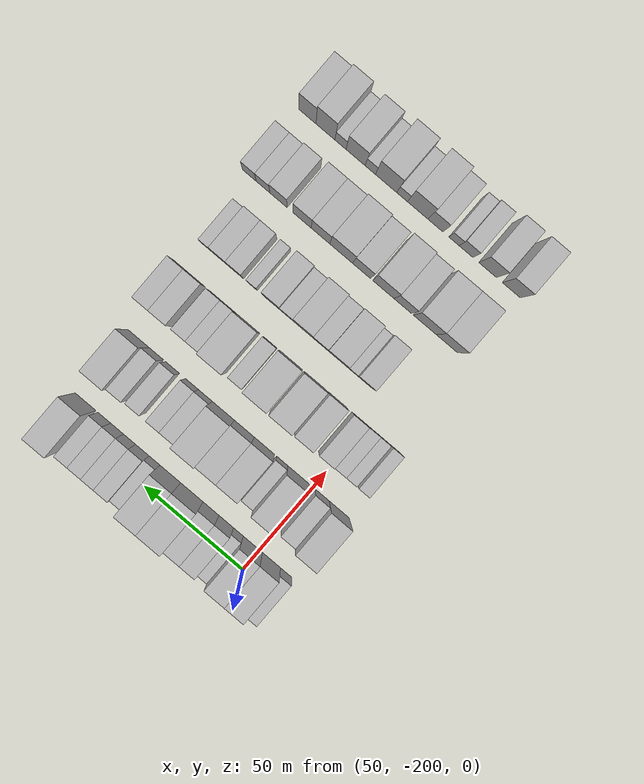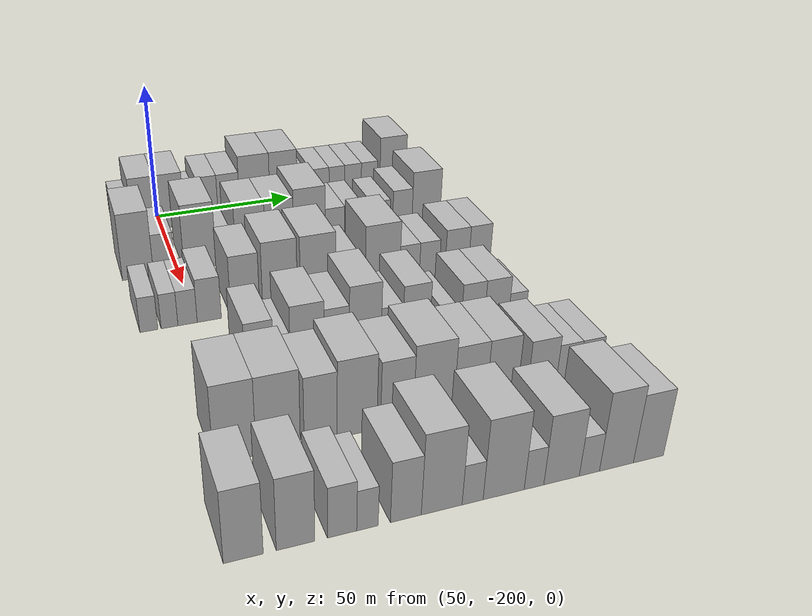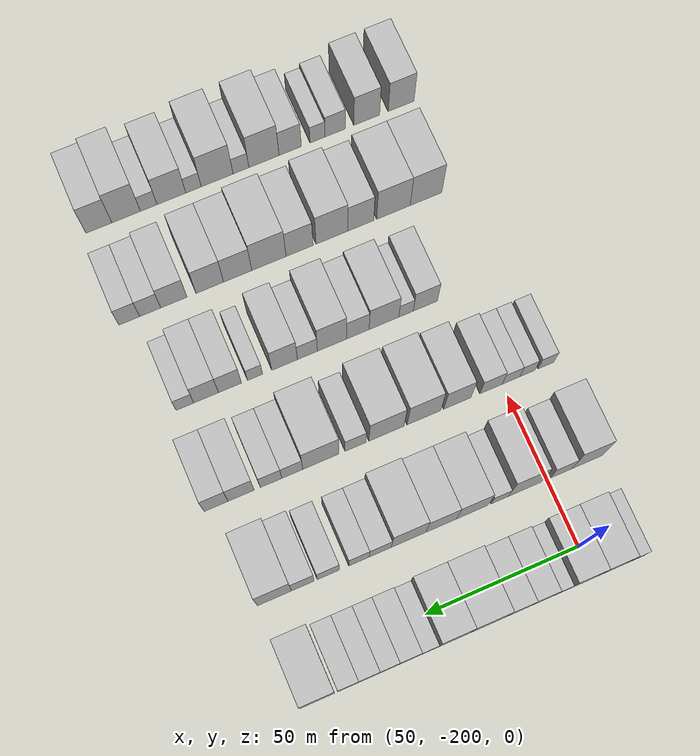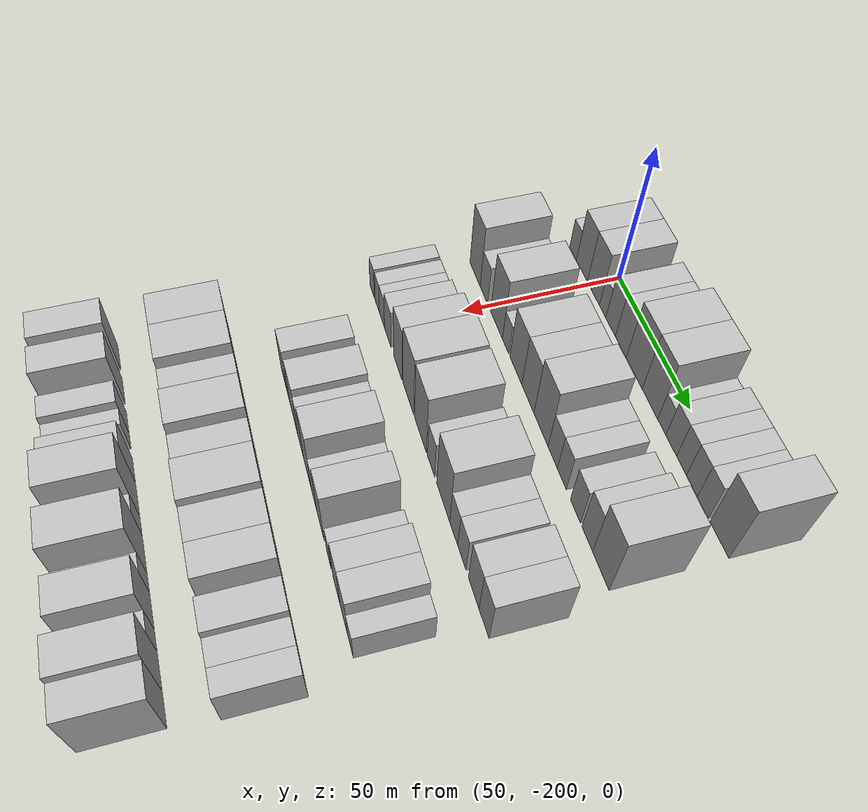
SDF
<sdf version="1.6">
 <world name="default">
  <model name="building_36">
   <static>1</static>
   <pose>50.0000 -213.4756 0 0.000000 0.000000 0.000000</pose>
   <link name="link">
    <pose>0 0 6.00 0 0 0</pose>
    <collision name="collision"><geometry><box><size>20.0000 5.7582 12.0000</size></box></geometry></collision>
    <visual name="visual">
     <cast_shadows>0</cast_shadows>
     <geometry><box><size>20.0000 5.7582 12.0000</size></box></geometry>
     <material>
      <script>
       <uri>model://HANNAS_wall/materials/scripts</uri>
       <uri>model://HANNAS_wall/materials/textures</uri>
       <name>vrc/HANNAS_wall</name>
      </script>
     </material>
    </visual>
   </link>
  </model>
  <model name="building_37">
   <static>1</static>
   <pose>50.0000 -206.0291 0 0.000000 0.000000 0.000000</pose>
   <link name="link">
    <pose>0 0 10.50 0 0 0</pose>
    <collision name="collision"><geometry><box><size>20.0000 9.1349 21.0000</size></box></geometry></collision>
    <visual name="visual">
     <cast_shadows>0</cast_shadows>
     <geometry><box><size>20.0000 9.1349 21.0000</size></box></geometry>
     <material>
      <script>
       <uri>model://HANNAS_wall/materials/scripts</uri>
       <uri>model://HANNAS_wall/materials/textures</uri>
       <name>vrc/HANNAS_wall</name>
      </script>
     </material>
    </visual>
   </link>
  </model>
  <model name="building_38">
   <static>1</static>
   <pose>50.0000 -196.5825 0 0.000000 0.000000 0.000000</pose>
   <link name="link">
    <pose>0 0 10.50 0 0 0</pose>
    <collision name="collision"><geometry><box><size>20.0000 9.7582 21.0000</size></box></geometry></collision>
    <visual name="visual">
     <cast_shadows>0</cast_shadows>
     <geometry><box><size>20.0000 9.7582 21.0000</size></box></geometry>
     <material>
      <script>
       <uri>model://HANNAS_wall/materials/scripts</uri>
       <uri>model://HANNAS_wall/materials/textures</uri>
       <name>vrc/HANNAS_wall</name>
      </script>
     </material>
    </visual>
   </link>
  </model>
  <model name="building_39">
   <static>1</static>
   <pose>50.0000 -189.2171 0 0.000000 0.000000 0.000000</pose>
   <link name="link">
    <pose>0 0 6.00 0 0 0</pose>
    <collision name="collision"><geometry><box><size>20.0000 4.9726 12.0000</size></box></geometry></collision>
    <visual name="visual">
     <cast_shadows>0</cast_shadows>
     <geometry><box><size>20.0000 4.9726 12.0000</size></box></geometry>
     <material>
      <script>
       <uri>model://HANNAS_wall/materials/scripts</uri>
       <uri>model://HANNAS_wall/materials/textures</uri>
       <name>vrc/HANNAS_wall</name>
      </script>
     </material>
    </visual>
   </link>
  </model>
  <model name="building_40">
   <static>1</static>
   <pose>50.0000 -183.0390 0 0.000000 0.000000 0.000000</pose>
   <link name="link">
    <pose>0 0 9.00 0 0 0</pose>
    <collision name="collision"><geometry><box><size>20.0000 7.3835 18.0000</size></box></geometry></collision>
    <visual name="visual">
     <cast_shadows>0</cast_shadows>
     <geometry><box><size>20.0000 7.3835 18.0000</size></box></geometry>
     <material>
      <script>
       <uri>model://HANNAS_wall/materials/scripts</uri>
       <uri>model://HANNAS_wall/materials/textures</uri>
       <name>vrc/HANNAS_wall</name>
      </script>
     </material>
    </visual>
   </link>
  </model>
  <model name="building_41">
   <static>1</static>
   <pose>50.0000 -175.3002 0 0.000000 0.000000 0.000000</pose>
   <link name="link">
    <pose>0 0 9.00 0 0 0</pose>
    <collision name="collision"><geometry><box><size>20.0000 8.0942 18.0000</size></box></geometry></collision>
    <visual name="visual">
     <cast_shadows>0</cast_shadows>
     <geometry><box><size>20.0000 8.0942 18.0000</size></box></geometry>
     <material>
      <script>
       <uri>model://HANNAS_wall/materials/scripts</uri>
       <uri>model://HANNAS_wall/materials/textures</uri>
       <name>vrc/HANNAS_wall</name>
      </script>
     </material>
    </visual>
   </link>
  </model>
  <model name="building_42">
   <static>1</static>
   <pose>50.0000 -165.5234 0 0.000000 0.000000 0.000000</pose>
   <link name="link">
    <pose>0 0 12.00 0 0 0</pose>
    <collision name="collision"><geometry><box><size>20.0000 11.4593 24.0000</size></box></geometry></collision>
    <visual name="visual">
     <cast_shadows>0</cast_shadows>
     <geometry><box><size>20.0000 11.4593 24.0000</size></box></geometry>
     <material>
      <script>
       <uri>model://HANNAS_wall/materials/scripts</uri>
       <uri>model://HANNAS_wall/materials/textures</uri>
       <name>vrc/HANNAS_wall</name>
      </script>
     </material>
    </visual>
   </link>
  </model>
  <model name="building_43">
   <static>1</static>
   <pose>50.0000 -154.5439 0 0.000000 0.000000 0.000000</pose>
   <link name="link">
    <pose>0 0 12.00 0 0 0</pose>
    <collision name="collision"><geometry><box><size>20.0000 10.4997 24.0000</size></box></geometry></collision>
    <visual name="visual">
     <cast_shadows>0</cast_shadows>
     <geometry><box><size>20.0000 10.4997 24.0000</size></box></geometry>
     <material>
      <script>
       <uri>model://HANNAS_wall/materials/scripts</uri>
       <uri>model://HANNAS_wall/materials/textures</uri>
       <name>vrc/HANNAS_wall</name>
      </script>
     </material>
    </visual>
   </link>
  </model>
  <model name="building_44">
   <static>1</static>
   <pose>50.0000 -146.5564 0 0.000000 0.000000 0.000000</pose>
   <link name="link">
    <pose>0 0 6.00 0 0 0</pose>
    <collision name="collision"><geometry><box><size>20.0000 5.4754 12.0000</size></box></geometry></collision>
    <visual name="visual">
     <cast_shadows>0</cast_shadows>
     <geometry><box><size>20.0000 5.4754 12.0000</size></box></geometry>
     <material>
      <script>
       <uri>model://HANNAS_wall/materials/scripts</uri>
       <uri>model://HANNAS_wall/materials/textures</uri>
       <name>vrc/HANNAS_wall</name>
      </script>
     </material>
    </visual>
   </link>
  </model>
  <model name="building_45">
   <static>1</static>
   <pose>50.0000 -140.3631 0 0.000000 0.000000 0.000000</pose>
   <link name="link">
    <pose>0 0 7.50 0 0 0</pose>
    <collision name="collision"><geometry><box><size>20.0000 6.9111 15.0000</size></box></geometry></collision>
    <visual name="visual">
     <cast_shadows>0</cast_shadows>
     <geometry><box><size>20.0000 6.9111 15.0000</size></box></geometry>
     <material>
      <script>
       <uri>model://HANNAS_wall/materials/scripts</uri>
       <uri>model://HANNAS_wall/materials/textures</uri>
       <name>vrc/HANNAS_wall</name>
      </script>
     </material>
    </visual>
   </link>
  </model>
  <model name="building_46">
   <static>1</static>
   <pose>50.0000 -133.8314 0 0.000000 0.000000 0.000000</pose>
   <link name="link">
    <pose>0 0 7.50 0 0 0</pose>
    <collision name="collision"><geometry><box><size>20.0000 6.1522 15.0000</size></box></geometry></collision>
    <visual name="visual">
     <cast_shadows>0</cast_shadows>
     <geometry><box><size>20.0000 6.1522 15.0000</size></box></geometry>
     <material>
      <script>
       <uri>model://HANNAS_wall/materials/scripts</uri>
       <uri>model://HANNAS_wall/materials/textures</uri>
       <name>vrc/HANNAS_wall</name>
      </script>
     </material>
    </visual>
   </link>
  </model>
  <model name="building_47">
   <static>1</static>
   <pose>50.0000 -127.4547 0 0.000000 0.000000 0.000000</pose>
   <link name="link">
    <pose>0 0 7.50 0 0 0</pose>
    <collision name="collision"><geometry><box><size>20.0000 6.6014 15.0000</size></box></geometry></collision>
    <visual name="visual">
     <cast_shadows>0</cast_shadows>
     <geometry><box><size>20.0000 6.6014 15.0000</size></box></geometry>
     <material>
      <script>
       <uri>model://HANNAS_wall/materials/scripts</uri>
       <uri>model://HANNAS_wall/materials/textures</uri>
       <name>vrc/HANNAS_wall</name>
      </script>
     </material>
    </visual>
   </link>
  </model>
  <model name="building_48">
   <static>1</static>
   <pose>50.0000 -120.9139 0 0.000000 0.000000 0.000000</pose>
   <link name="link">
    <pose>0 0 7.50 0 0 0</pose>
    <collision name="collision"><geometry><box><size>20.0000 6.4801 15.0000</size></box></geometry></collision>
    <visual name="visual">
     <cast_shadows>0</cast_shadows>
     <geometry><box><size>20.0000 6.4801 15.0000</size></box></geometry>
     <material>
      <script>
       <uri>model://HANNAS_wall/materials/scripts</uri>
       <uri>model://HANNAS_wall/materials/textures</uri>
       <name>vrc/HANNAS_wall</name>
      </script>
     </material>
    </visual>
   </link>
  </model>
  <model name="building_49">
   <static>1</static>
   <pose>50.0000 -111.3536 0 0.000000 0.000000 0.000000</pose>
   <link name="link">
    <pose>0 0 12.00 0 0 0</pose>
    <collision name="collision"><geometry><box><size>20.0000 10.6406 24.0000</size></box></geometry></collision>
    <visual name="visual">
     <cast_shadows>0</cast_shadows>
     <geometry><box><size>20.0000 10.6406 24.0000</size></box></geometry>
     <material>
      <script>
       <uri>model://HANNAS_wall/materials/scripts</uri>
       <uri>model://HANNAS_wall/materials/textures</uri>
       <name>vrc/HANNAS_wall</name>
      </script>
     </material>
    </visual>
   </link>
  </model>
  <model name="building_165">
   <static>1</static>
   <pose>82.0000 -213.2278 0 0.000000 0.000000 0.000000</pose>
   <link name="link">
    <pose>0 0 12.00 0 0 0</pose>
    <collision name="collision"><geometry><box><size>20.0000 10.1787 24.0000</size></box></geometry></collision>
    <visual name="visual">
     <cast_shadows>0</cast_shadows>
     <geometry><box><size>20.0000 10.1787 24.0000</size></box></geometry>
     <material>
      <script>
       <uri>model://HANNAS_wall/materials/scripts</uri>
       <uri>model://HANNAS_wall/materials/textures</uri>
       <name>vrc/HANNAS_wall</name>
      </script>
     </material>
    </visual>
   </link>
  </model>
  <model name="building_166">
   <static>1</static>
   <pose>82.0000 -204.5512 0 0.000000 0.000000 0.000000</pose>
   <link name="link">
    <pose>0 0 7.50 0 0 0</pose>
    <collision name="collision"><geometry><box><size>20.0000 7.1746 15.0000</size></box></geometry></collision>
    <visual name="visual">
     <cast_shadows>0</cast_shadows>
     <geometry><box><size>20.0000 7.1746 15.0000</size></box></geometry>
     <material>
      <script>
       <uri>model://HANNAS_wall/materials/scripts</uri>
       <uri>model://HANNAS_wall/materials/textures</uri>
       <name>vrc/HANNAS_wall</name>
      </script>
     </material>
    </visual>
   </link>
  </model>
  <model name="building_167">
   <static>1</static>
   <pose>82.0000 -192.5271 0 0.000000 0.000000 0.000000</pose>
   <link name="link">
    <pose>0 0 12.00 0 0 0</pose>
    <collision name="collision"><geometry><box><size>20.0000 10.8735 24.0000</size></box></geometry></collision>
    <visual name="visual">
     <cast_shadows>0</cast_shadows>
     <geometry><box><size>20.0000 10.8735 24.0000</size></box></geometry>
     <material>
      <script>
       <uri>model://HANNAS_wall/materials/scripts</uri>
       <uri>model://HANNAS_wall/materials/textures</uri>
       <name>vrc/HANNAS_wall</name>
      </script>
     </material>
    </visual>
   </link>
  </model>
  <model name="building_168">
   <static>1</static>
   <pose>82.0000 -184.2336 0 0.000000 0.000000 0.000000</pose>
   <link name="link">
    <pose>0 0 6.00 0 0 0</pose>
    <collision name="collision"><geometry><box><size>20.0000 5.7136 12.0000</size></box></geometry></collision>
    <visual name="visual">
     <cast_shadows>0</cast_shadows>
     <geometry><box><size>20.0000 5.7136 12.0000</size></box></geometry>
     <material>
      <script>
       <uri>model://HANNAS_wall/materials/scripts</uri>
       <uri>model://HANNAS_wall/materials/textures</uri>
       <name>vrc/HANNAS_wall</name>
      </script>
     </material>
    </visual>
   </link>
  </model>
  <model name="building_169">
   <static>1</static>
   <pose>82.0000 -175.2098 0 0.000000 0.000000 0.000000</pose>
   <link name="link">
    <pose>0 0 10.50 0 0 0</pose>
    <collision name="collision"><geometry><box><size>20.0000 10.3340 21.0000</size></box></geometry></collision>
    <visual name="visual">
     <cast_shadows>0</cast_shadows>
     <geometry><box><size>20.0000 10.3340 21.0000</size></box></geometry>
     <material>
      <script>
       <uri>model://HANNAS_wall/materials/scripts</uri>
       <uri>model://HANNAS_wall/materials/textures</uri>
       <name>vrc/HANNAS_wall</name>
      </script>
     </material>
    </visual>
   </link>
  </model>
  <model name="building_170">
   <static>1</static>
   <pose>82.0000 -165.0178 0 0.000000 0.000000 0.000000</pose>
   <link name="link">
    <pose>0 0 10.50 0 0 0</pose>
    <collision name="collision"><geometry><box><size>20.0000 10.0502 21.0000</size></box></geometry></collision>
    <visual name="visual">
     <cast_shadows>0</cast_shadows>
     <geometry><box><size>20.0000 10.0502 21.0000</size></box></geometry>
     <material>
      <script>
       <uri>model://HANNAS_wall/materials/scripts</uri>
       <uri>model://HANNAS_wall/materials/textures</uri>
       <name>vrc/HANNAS_wall</name>
      </script>
     </material>
    </visual>
   </link>
  </model>
  <model name="building_171">
   <static>1</static>
   <pose>82.0000 -154.3665 0 0.000000 0.000000 0.000000</pose>
   <link name="link">
    <pose>0 0 12.00 0 0 0</pose>
    <collision name="collision"><geometry><box><size>20.0000 11.2523 24.0000</size></box></geometry></collision>
    <visual name="visual">
     <cast_shadows>0</cast_shadows>
     <geometry><box><size>20.0000 11.2523 24.0000</size></box></geometry>
     <material>
      <script>
       <uri>model://HANNAS_wall/materials/scripts</uri>
       <uri>model://HANNAS_wall/materials/textures</uri>
       <name>vrc/HANNAS_wall</name>
      </script>
     </material>
    </visual>
   </link>
  </model>
  <model name="building_172">
   <static>1</static>
   <pose>82.0000 -145.1829 0 0.000000 0.000000 0.000000</pose>
   <link name="link">
    <pose>0 0 7.50 0 0 0</pose>
    <collision name="collision"><geometry><box><size>20.0000 7.1149 15.0000</size></box></geometry></collision>
    <visual name="visual">
     <cast_shadows>0</cast_shadows>
     <geometry><box><size>20.0000 7.1149 15.0000</size></box></geometry>
     <material>
      <script>
       <uri>model://HANNAS_wall/materials/scripts</uri>
       <uri>model://HANNAS_wall/materials/textures</uri>
       <name>vrc/HANNAS_wall</name>
      </script>
     </material>
    </visual>
   </link>
  </model>
  <model name="building_173">
   <static>1</static>
   <pose>82.0000 -138.3194 0 0.000000 0.000000 0.000000</pose>
   <link name="link">
    <pose>0 0 7.50 0 0 0</pose>
    <collision name="collision"><geometry><box><size>20.0000 6.6121 15.0000</size></box></geometry></collision>
    <visual name="visual">
     <cast_shadows>0</cast_shadows>
     <geometry><box><size>20.0000 6.6121 15.0000</size></box></geometry>
     <material>
      <script>
       <uri>model://HANNAS_wall/materials/scripts</uri>
       <uri>model://HANNAS_wall/materials/textures</uri>
       <name>vrc/HANNAS_wall</name>
      </script>
     </material>
    </visual>
   </link>
  </model>
  <model name="building_174">
   <static>1</static>
   <pose>82.0000 -128.4636 0 0.000000 0.000000 0.000000</pose>
   <link name="link">
    <pose>0 0 7.50 0 0 0</pose>
    <collision name="collision"><geometry><box><size>20.0000 7.0996 15.0000</size></box></geometry></collision>
    <visual name="visual">
     <cast_shadows>0</cast_shadows>
     <geometry><box><size>20.0000 7.0996 15.0000</size></box></geometry>
     <material>
      <script>
       <uri>model://HANNAS_wall/materials/scripts</uri>
       <uri>model://HANNAS_wall/materials/textures</uri>
       <name>vrc/HANNAS_wall</name>
      </script>
     </material>
    </visual>
   </link>
  </model>
  <model name="building_175">
   <static>1</static>
   <pose>82.0000 -120.2692 0 0.000000 0.000000 0.000000</pose>
   <link name="link">
    <pose>0 0 9.00 0 0 0</pose>
    <collision name="collision"><geometry><box><size>20.0000 7.2894 18.0000</size></box></geometry></collision>
    <visual name="visual">
     <cast_shadows>0</cast_shadows>
     <geometry><box><size>20.0000 7.2894 18.0000</size></box></geometry>
     <material>
      <script>
       <uri>model://HANNAS_wall/materials/scripts</uri>
       <uri>model://HANNAS_wall/materials/textures</uri>
       <name>vrc/HANNAS_wall</name>
      </script>
     </material>
    </visual>
   </link>
  </model>
  <model name="building_176">
   <static>1</static>
   <pose>82.0000 -111.2382 0 0.000000 0.000000 0.000000</pose>
   <link name="link">
    <pose>0 0 12.00 0 0 0</pose>
    <collision name="collision"><geometry><box><size>20.0000 10.7725 24.0000</size></box></geometry></collision>
    <visual name="visual">
     <cast_shadows>0</cast_shadows>
     <geometry><box><size>20.0000 10.7725 24.0000</size></box></geometry>
     <material>
      <script>
       <uri>model://HANNAS_wall/materials/scripts</uri>
       <uri>model://HANNAS_wall/materials/textures</uri>
       <name>vrc/HANNAS_wall</name>
      </script>
     </material>
    </visual>
   </link>
  </model>
  <model name="building_289">
   <static>1</static>
   <pose>114.0000 -214.7127 0 0.000000 0.000000 0.000000</pose>
   <link name="link">
    <pose>0 0 6.00 0 0 0</pose>
    <collision name="collision"><geometry><box><size>20.0000 5.3920 12.0000</size></box></geometry></collision>
    <visual name="visual">
     <cast_shadows>0</cast_shadows>
     <geometry><box><size>20.0000 5.3920 12.0000</size></box></geometry>
     <material>
      <script>
       <uri>model://HANNAS_wall/materials/scripts</uri>
       <uri>model://HANNAS_wall/materials/textures</uri>
       <name>vrc/HANNAS_wall</name>
      </script>
     </material>
    </visual>
   </link>
  </model>
  <model name="building_290">
   <static>1</static>
   <pose>114.0000 -208.4666 0 0.000000 0.000000 0.000000</pose>
   <link name="link">
    <pose>0 0 6.00 0 0 0</pose>
    <collision name="collision"><geometry><box><size>20.0000 5.1001 12.0000</size></box></geometry></collision>
    <visual name="visual">
     <cast_shadows>0</cast_shadows>
     <geometry><box><size>20.0000 5.1001 12.0000</size></box></geometry>
     <material>
      <script>
       <uri>model://HANNAS_wall/materials/scripts</uri>
       <uri>model://HANNAS_wall/materials/textures</uri>
       <name>vrc/HANNAS_wall</name>
      </script>
     </material>
    </visual>
   </link>
  </model>
  <model name="building_291">
   <static>1</static>
   <pose>114.0000 -202.9513 0 0.000000 0.000000 0.000000</pose>
   <link name="link">
    <pose>0 0 6.00 0 0 0</pose>
    <collision name="collision"><geometry><box><size>20.0000 5.9306 12.0000</size></box></geometry></collision>
    <visual name="visual">
     <cast_shadows>0</cast_shadows>
     <geometry><box><size>20.0000 5.9306 12.0000</size></box></geometry>
     <material>
      <script>
       <uri>model://HANNAS_wall/materials/scripts</uri>
       <uri>model://HANNAS_wall/materials/textures</uri>
       <name>vrc/HANNAS_wall</name>
      </script>
     </material>
    </visual>
   </link>
  </model>
  <model name="building_292">
   <static>1</static>
   <pose>114.0000 -196.2373 0 0.000000 0.000000 0.000000</pose>
   <link name="link">
    <pose>0 0 7.50 0 0 0</pose>
    <collision name="collision"><geometry><box><size>20.0000 7.4974 15.0000</size></box></geometry></collision>
    <visual name="visual">
     <cast_shadows>0</cast_shadows>
     <geometry><box><size>20.0000 7.4974 15.0000</size></box></geometry>
     <material>
      <script>
       <uri>model://HANNAS_wall/materials/scripts</uri>
       <uri>model://HANNAS_wall/materials/textures</uri>
       <name>vrc/HANNAS_wall</name>
      </script>
     </material>
    </visual>
   </link>
  </model>
  <model name="building_293">
   <static>1</static>
   <pose>114.0000 -184.9169 0 0.000000 0.000000 0.000000</pose>
   <link name="link">
    <pose>0 0 10.50 0 0 0</pose>
    <collision name="collision"><geometry><box><size>20.0000 9.1435 21.0000</size></box></geometry></collision>
    <visual name="visual">
     <cast_shadows>0</cast_shadows>
     <geometry><box><size>20.0000 9.1435 21.0000</size></box></geometry>
     <material>
      <script>
       <uri>model://HANNAS_wall/materials/scripts</uri>
       <uri>model://HANNAS_wall/materials/textures</uri>
       <name>vrc/HANNAS_wall</name>
      </script>
     </material>
    </visual>
   </link>
  </model>
  <model name="building_294">
   <static>1</static>
   <pose>114.0000 -173.7468 0 0.000000 0.000000 0.000000</pose>
   <link name="link">
    <pose>0 0 12.00 0 0 0</pose>
    <collision name="collision"><geometry><box><size>20.0000 11.1966 24.0000</size></box></geometry></collision>
    <visual name="visual">
     <cast_shadows>0</cast_shadows>
     <geometry><box><size>20.0000 11.1966 24.0000</size></box></geometry>
     <material>
      <script>
       <uri>model://HANNAS_wall/materials/scripts</uri>
       <uri>model://HANNAS_wall/materials/textures</uri>
       <name>vrc/HANNAS_wall</name>
      </script>
     </material>
    </visual>
   </link>
  </model>
  <model name="building_295">
   <static>1</static>
   <pose>114.0000 -161.3422 0 0.000000 0.000000 0.000000</pose>
   <link name="link">
    <pose>0 0 12.00 0 0 0</pose>
    <collision name="collision"><geometry><box><size>20.0000 11.6127 24.0000</size></box></geometry></collision>
    <visual name="visual">
     <cast_shadows>0</cast_shadows>
     <geometry><box><size>20.0000 11.6127 24.0000</size></box></geometry>
     <material>
      <script>
       <uri>model://HANNAS_wall/materials/scripts</uri>
       <uri>model://HANNAS_wall/materials/textures</uri>
       <name>vrc/HANNAS_wall</name>
      </script>
     </material>
    </visual>
   </link>
  </model>
  <model name="building_296">
   <static>1</static>
   <pose>114.0000 -151.1063 0 0.000000 0.000000 0.000000</pose>
   <link name="link">
    <pose>0 0 7.50 0 0 0</pose>
    <collision name="collision"><geometry><box><size>20.0000 6.8592 15.0000</size></box></geometry></collision>
    <visual name="visual">
     <cast_shadows>0</cast_shadows>
     <geometry><box><size>20.0000 6.8592 15.0000</size></box></geometry>
     <material>
      <script>
       <uri>model://HANNAS_wall/materials/scripts</uri>
       <uri>model://HANNAS_wall/materials/textures</uri>
       <name>vrc/HANNAS_wall</name>
      </script>
     </material>
    </visual>
   </link>
  </model>
  <model name="building_297">
   <static>1</static>
   <pose>114.0000 -139.7687 0 0.000000 0.000000 0.000000</pose>
   <link name="link">
    <pose>0 0 12.00 0 0 0</pose>
    <collision name="collision"><geometry><box><size>20.0000 11.8159 24.0000</size></box></geometry></collision>
    <visual name="visual">
     <cast_shadows>0</cast_shadows>
     <geometry><box><size>20.0000 11.8159 24.0000</size></box></geometry>
     <material>
      <script>
       <uri>model://HANNAS_wall/materials/scripts</uri>
       <uri>model://HANNAS_wall/materials/textures</uri>
       <name>vrc/HANNAS_wall</name>
      </script>
     </material>
    </visual>
   </link>
  </model>
  <model name="building_298">
   <static>1</static>
   <pose>114.0000 -130.4417 0 0.000000 0.000000 0.000000</pose>
   <link name="link">
    <pose>0 0 7.50 0 0 0</pose>
    <collision name="collision"><geometry><box><size>20.0000 6.8381 15.0000</size></box></geometry></collision>
    <visual name="visual">
     <cast_shadows>0</cast_shadows>
     <geometry><box><size>20.0000 6.8381 15.0000</size></box></geometry>
     <material>
      <script>
       <uri>model://HANNAS_wall/materials/scripts</uri>
       <uri>model://HANNAS_wall/materials/textures</uri>
       <name>vrc/HANNAS_wall</name>
      </script>
     </material>
    </visual>
   </link>
  </model>
  <model name="building_299">
   <static>1</static>
   <pose>114.0000 -123.5285 0 0.000000 0.000000 0.000000</pose>
   <link name="link">
    <pose>0 0 7.50 0 0 0</pose>
    <collision name="collision"><geometry><box><size>20.0000 6.9883 15.0000</size></box></geometry></collision>
    <visual name="visual">
     <cast_shadows>0</cast_shadows>
     <geometry><box><size>20.0000 6.9883 15.0000</size></box></geometry>
     <material>
      <script>
       <uri>model://HANNAS_wall/materials/scripts</uri>
       <uri>model://HANNAS_wall/materials/textures</uri>
       <name>vrc/HANNAS_wall</name>
      </script>
     </material>
    </visual>
   </link>
  </model>
  <model name="building_300">
   <static>1</static>
   <pose>114.0000 -113.8081 0 0.000000 0.000000 0.000000</pose>
   <link name="link">
    <pose>0 0 9.00 0 0 0</pose>
    <collision name="collision"><geometry><box><size>20.0000 8.4526 18.0000</size></box></geometry></collision>
    <visual name="visual">
     <cast_shadows>0</cast_shadows>
     <geometry><box><size>20.0000 8.4526 18.0000</size></box></geometry>
     <material>
      <script>
       <uri>model://HANNAS_wall/materials/scripts</uri>
       <uri>model://HANNAS_wall/materials/textures</uri>
       <name>vrc/HANNAS_wall</name>
      </script>
     </material>
    </visual>
   </link>
  </model>
  <model name="building_301">
   <static>1</static>
   <pose>114.0000 -105.7337 0 0.000000 0.000000 0.000000</pose>
   <link name="link">
    <pose>0 0 9.00 0 0 0</pose>
    <collision name="collision"><geometry><box><size>20.0000 7.6961 18.0000</size></box></geometry></collision>
    <visual name="visual">
     <cast_shadows>0</cast_shadows>
     <geometry><box><size>20.0000 7.6961 18.0000</size></box></geometry>
     <material>
      <script>
       <uri>model://HANNAS_wall/materials/scripts</uri>
       <uri>model://HANNAS_wall/materials/textures</uri>
       <name>vrc/HANNAS_wall</name>
      </script>
     </material>
    </visual>
   </link>
  </model>
  <model name="building_404">
   <static>1</static>
   <pose>146.0000 -188.6310 0 0.000000 0.000000 0.000000</pose>
   <link name="link">
    <pose>0 0 9.00 0 0 0</pose>
    <collision name="collision"><geometry><box><size>20.0000 8.1822 18.0000</size></box></geometry></collision>
    <visual name="visual">
     <cast_shadows>0</cast_shadows>
     <geometry><box><size>20.0000 8.1822 18.0000</size></box></geometry>
     <material>
      <script>
       <uri>model://HANNAS_wall/materials/scripts</uri>
       <uri>model://HANNAS_wall/materials/textures</uri>
       <name>vrc/HANNAS_wall</name>
      </script>
     </material>
    </visual>
   </link>
  </model>
  <model name="building_405">
   <static>1</static>
   <pose>146.0000 -182.0834 0 0.000000 0.000000 0.000000</pose>
   <link name="link">
    <pose>0 0 6.00 0 0 0</pose>
    <collision name="collision"><geometry><box><size>20.0000 4.9129 12.0000</size></box></geometry></collision>
    <visual name="visual">
     <cast_shadows>0</cast_shadows>
     <geometry><box><size>20.0000 4.9129 12.0000</size></box></geometry>
     <material>
      <script>
       <uri>model://HANNAS_wall/materials/scripts</uri>
       <uri>model://HANNAS_wall/materials/textures</uri>
       <name>vrc/HANNAS_wall</name>
      </script>
     </material>
    </visual>
   </link>
  </model>
  <model name="building_406">
   <static>1</static>
   <pose>146.0000 -174.6200 0 0.000000 0.000000 0.000000</pose>
   <link name="link">
    <pose>0 0 10.50 0 0 0</pose>
    <collision name="collision"><geometry><box><size>20.0000 10.0140 21.0000</size></box></geometry></collision>
    <visual name="visual">
     <cast_shadows>0</cast_shadows>
     <geometry><box><size>20.0000 10.0140 21.0000</size></box></geometry>
     <material>
      <script>
       <uri>model://HANNAS_wall/materials/scripts</uri>
       <uri>model://HANNAS_wall/materials/textures</uri>
       <name>vrc/HANNAS_wall</name>
      </script>
     </material>
    </visual>
   </link>
  </model>
  <model name="building_407">
   <static>1</static>
   <pose>146.0000 -165.8591 0 0.000000 0.000000 0.000000</pose>
   <link name="link">
    <pose>0 0 9.00 0 0 0</pose>
    <collision name="collision"><geometry><box><size>20.0000 7.5078 18.0000</size></box></geometry></collision>
    <visual name="visual">
     <cast_shadows>0</cast_shadows>
     <geometry><box><size>20.0000 7.5078 18.0000</size></box></geometry>
     <material>
      <script>
       <uri>model://HANNAS_wall/materials/scripts</uri>
       <uri>model://HANNAS_wall/materials/textures</uri>
       <name>vrc/HANNAS_wall</name>
      </script>
     </material>
    </visual>
   </link>
  </model>
  <model name="building_408">
   <static>1</static>
   <pose>146.0000 -157.2145 0 0.000000 0.000000 0.000000</pose>
   <link name="link">
    <pose>0 0 12.00 0 0 0</pose>
    <collision name="collision"><geometry><box><size>20.0000 9.7814 24.0000</size></box></geometry></collision>
    <visual name="visual">
     <cast_shadows>0</cast_shadows>
     <geometry><box><size>20.0000 9.7814 24.0000</size></box></geometry>
     <material>
      <script>
       <uri>model://HANNAS_wall/materials/scripts</uri>
       <uri>model://HANNAS_wall/materials/textures</uri>
       <name>vrc/HANNAS_wall</name>
      </script>
     </material>
    </visual>
   </link>
  </model>
  <model name="building_409">
   <static>1</static>
   <pose>146.0000 -148.9905 0 0.000000 0.000000 0.000000</pose>
   <link name="link">
    <pose>0 0 7.50 0 0 0</pose>
    <collision name="collision"><geometry><box><size>20.0000 6.6666 15.0000</size></box></geometry></collision>
    <visual name="visual">
     <cast_shadows>0</cast_shadows>
     <geometry><box><size>20.0000 6.6666 15.0000</size></box></geometry>
     <material>
      <script>
       <uri>model://HANNAS_wall/materials/scripts</uri>
       <uri>model://HANNAS_wall/materials/textures</uri>
       <name>vrc/HANNAS_wall</name>
      </script>
     </material>
    </visual>
   </link>
  </model>
  <model name="building_410">
   <static>1</static>
   <pose>146.0000 -141.3815 0 0.000000 0.000000 0.000000</pose>
   <link name="link">
    <pose>0 0 10.50 0 0 0</pose>
    <collision name="collision"><geometry><box><size>20.0000 8.5515 21.0000</size></box></geometry></collision>
    <visual name="visual">
     <cast_shadows>0</cast_shadows>
     <geometry><box><size>20.0000 8.5515 21.0000</size></box></geometry>
     <material>
      <script>
       <uri>model://HANNAS_wall/materials/scripts</uri>
       <uri>model://HANNAS_wall/materials/textures</uri>
       <name>vrc/HANNAS_wall</name>
      </script>
     </material>
    </visual>
   </link>
  </model>
  <model name="building_411">
   <static>1</static>
   <pose>146.0000 -131.5933 0 0.000000 0.000000 0.000000</pose>
   <link name="link">
    <pose>0 0 6.00 0 0 0</pose>
    <collision name="collision"><geometry><box><size>20.0000 5.0251 12.0000</size></box></geometry></collision>
    <visual name="visual">
     <cast_shadows>0</cast_shadows>
     <geometry><box><size>20.0000 5.0251 12.0000</size></box></geometry>
     <material>
      <script>
       <uri>model://HANNAS_wall/materials/scripts</uri>
       <uri>model://HANNAS_wall/materials/textures</uri>
       <name>vrc/HANNAS_wall</name>
      </script>
     </material>
    </visual>
   </link>
  </model>
  <model name="building_412">
   <static>1</static>
   <pose>146.0000 -123.2937 0 0.000000 0.000000 0.000000</pose>
   <link name="link">
    <pose>0 0 9.00 0 0 0</pose>
    <collision name="collision"><geometry><box><size>20.0000 7.5740 18.0000</size></box></geometry></collision>
    <visual name="visual">
     <cast_shadows>0</cast_shadows>
     <geometry><box><size>20.0000 7.5740 18.0000</size></box></geometry>
     <material>
      <script>
       <uri>model://HANNAS_wall/materials/scripts</uri>
       <uri>model://HANNAS_wall/materials/textures</uri>
       <name>vrc/HANNAS_wall</name>
      </script>
     </material>
    </visual>
   </link>
  </model>
  <model name="building_413">
   <static>1</static>
   <pose>146.0000 -115.4598 0 0.000000 0.000000 0.000000</pose>
   <link name="link">
    <pose>0 0 9.00 0 0 0</pose>
    <collision name="collision"><geometry><box><size>20.0000 8.0939 18.0000</size></box></geometry></collision>
    <visual name="visual">
     <cast_shadows>0</cast_shadows>
     <geometry><box><size>20.0000 8.0939 18.0000</size></box></geometry>
     <material>
      <script>
       <uri>model://HANNAS_wall/materials/scripts</uri>
       <uri>model://HANNAS_wall/materials/textures</uri>
       <name>vrc/HANNAS_wall</name>
      </script>
     </material>
    </visual>
   </link>
  </model>
  <model name="building_414">
   <static>1</static>
   <pose>146.0000 -108.5123 0 0.000000 0.000000 0.000000</pose>
   <link name="link">
    <pose>0 0 6.00 0 0 0</pose>
    <collision name="collision"><geometry><box><size>20.0000 5.8012 12.0000</size></box></geometry></collision>
    <visual name="visual">
     <cast_shadows>0</cast_shadows>
     <geometry><box><size>20.0000 5.8012 12.0000</size></box></geometry>
     <material>
      <script>
       <uri>model://HANNAS_wall/materials/scripts</uri>
       <uri>model://HANNAS_wall/materials/textures</uri>
       <name>vrc/HANNAS_wall</name>
      </script>
     </material>
    </visual>
   </link>
  </model>
  <model name="building_530">
   <static>1</static>
   <pose>178.0000 -203.2652 0 0.000000 0.000000 0.000000</pose>
   <link name="link">
    <pose>0 0 12.00 0 0 0</pose>
    <collision name="collision"><geometry><box><size>20.0000 10.8945 24.0000</size></box></geometry></collision>
    <visual name="visual">
     <cast_shadows>0</cast_shadows>
     <geometry><box><size>20.0000 10.8945 24.0000</size></box></geometry>
     <material>
      <script>
       <uri>model://HANNAS_wall/materials/scripts</uri>
       <uri>model://HANNAS_wall/materials/textures</uri>
       <name>vrc/HANNAS_wall</name>
      </script>
     </material>
    </visual>
   </link>
  </model>
  <model name="building_531">
   <static>1</static>
   <pose>178.0000 -192.0294 0 0.000000 0.000000 0.000000</pose>
   <link name="link">
    <pose>0 0 12.00 0 0 0</pose>
    <collision name="collision"><geometry><box><size>20.0000 11.5771 24.0000</size></box></geometry></collision>
    <visual name="visual">
     <cast_shadows>0</cast_shadows>
     <geometry><box><size>20.0000 11.5771 24.0000</size></box></geometry>
     <material>
      <script>
       <uri>model://HANNAS_wall/materials/scripts</uri>
       <uri>model://HANNAS_wall/materials/textures</uri>
       <name>vrc/HANNAS_wall</name>
      </script>
     </material>
    </visual>
   </link>
  </model>
  <model name="building_532">
   <static>1</static>
   <pose>178.0000 -180.8157 0 0.000000 0.000000 0.000000</pose>
   <link name="link">
    <pose>0 0 10.50 0 0 0</pose>
    <collision name="collision"><geometry><box><size>20.0000 8.8502 21.0000</size></box></geometry></collision>
    <visual name="visual">
     <cast_shadows>0</cast_shadows>
     <geometry><box><size>20.0000 8.8502 21.0000</size></box></geometry>
     <material>
      <script>
       <uri>model://HANNAS_wall/materials/scripts</uri>
       <uri>model://HANNAS_wall/materials/textures</uri>
       <name>vrc/HANNAS_wall</name>
      </script>
     </material>
    </visual>
   </link>
  </model>
  <model name="building_533">
   <static>1</static>
   <pose>178.0000 -170.9533 0 0.000000 0.000000 0.000000</pose>
   <link name="link">
    <pose>0 0 12.00 0 0 0</pose>
    <collision name="collision"><geometry><box><size>20.0000 10.8746 24.0000</size></box></geometry></collision>
    <visual name="visual">
     <cast_shadows>0</cast_shadows>
     <geometry><box><size>20.0000 10.8746 24.0000</size></box></geometry>
     <material>
      <script>
       <uri>model://HANNAS_wall/materials/scripts</uri>
       <uri>model://HANNAS_wall/materials/textures</uri>
       <name>vrc/HANNAS_wall</name>
      </script>
     </material>
    </visual>
   </link>
  </model>
  <model name="building_534">
   <static>1</static>
   <pose>178.0000 -159.9305 0 0.000000 0.000000 0.000000</pose>
   <link name="link">
    <pose>0 0 10.50 0 0 0</pose>
    <collision name="collision"><geometry><box><size>20.0000 9.1710 21.0000</size></box></geometry></collision>
    <visual name="visual">
     <cast_shadows>0</cast_shadows>
     <geometry><box><size>20.0000 9.1710 21.0000</size></box></geometry>
     <material>
      <script>
       <uri>model://HANNAS_wall/materials/scripts</uri>
       <uri>model://HANNAS_wall/materials/textures</uri>
       <name>vrc/HANNAS_wall</name>
      </script>
     </material>
    </visual>
   </link>
  </model>
  <model name="building_535">
   <static>1</static>
   <pose>178.0000 -149.5548 0 0.000000 0.000000 0.000000</pose>
   <link name="link">
    <pose>0 0 12.00 0 0 0</pose>
    <collision name="collision"><geometry><box><size>20.0000 11.5803 24.0000</size></box></geometry></collision>
    <visual name="visual">
     <cast_shadows>0</cast_shadows>
     <geometry><box><size>20.0000 11.5803 24.0000</size></box></geometry>
     <material>
      <script>
       <uri>model://HANNAS_wall/materials/scripts</uri>
       <uri>model://HANNAS_wall/materials/textures</uri>
       <name>vrc/HANNAS_wall</name>
      </script>
     </material>
    </visual>
   </link>
  </model>
  <model name="building_536">
   <static>1</static>
   <pose>178.0000 -139.0155 0 0.000000 0.000000 0.000000</pose>
   <link name="link">
    <pose>0 0 10.50 0 0 0</pose>
    <collision name="collision"><geometry><box><size>20.0000 9.4981 21.0000</size></box></geometry></collision>
    <visual name="visual">
     <cast_shadows>0</cast_shadows>
     <geometry><box><size>20.0000 9.4981 21.0000</size></box></geometry>
     <material>
      <script>
       <uri>model://HANNAS_wall/materials/scripts</uri>
       <uri>model://HANNAS_wall/materials/textures</uri>
       <name>vrc/HANNAS_wall</name>
      </script>
     </material>
    </visual>
   </link>
  </model>
  <model name="building_537">
   <static>1</static>
   <pose>178.0000 -129.6422 0 0.000000 0.000000 0.000000</pose>
   <link name="link">
    <pose>0 0 10.50 0 0 0</pose>
    <collision name="collision"><geometry><box><size>20.0000 9.2486 21.0000</size></box></geometry></collision>
    <visual name="visual">
     <cast_shadows>0</cast_shadows>
     <geometry><box><size>20.0000 9.2486 21.0000</size></box></geometry>
     <material>
      <script>
       <uri>model://HANNAS_wall/materials/scripts</uri>
       <uri>model://HANNAS_wall/materials/textures</uri>
       <name>vrc/HANNAS_wall</name>
      </script>
     </material>
    </visual>
   </link>
  </model>
  <model name="building_538">
   <static>1</static>
   <pose>178.0000 -117.6517 0 0.000000 0.000000 0.000000</pose>
   <link name="link">
    <pose>0 0 9.00 0 0 0</pose>
    <collision name="collision"><geometry><box><size>20.0000 8.7324 18.0000</size></box></geometry></collision>
    <visual name="visual">
     <cast_shadows>0</cast_shadows>
     <geometry><box><size>20.0000 8.7324 18.0000</size></box></geometry>
     <material>
      <script>
       <uri>model://HANNAS_wall/materials/scripts</uri>
       <uri>model://HANNAS_wall/materials/textures</uri>
       <name>vrc/HANNAS_wall</name>
      </script>
     </material>
    </visual>
   </link>
  </model>
  <model name="building_539">
   <static>1</static>
   <pose>178.0000 -109.7889 0 0.000000 0.000000 0.000000</pose>
   <link name="link">
    <pose>0 0 7.50 0 0 0</pose>
    <collision name="collision"><geometry><box><size>20.0000 6.9932 15.0000</size></box></geometry></collision>
    <visual name="visual">
     <cast_shadows>0</cast_shadows>
     <geometry><box><size>20.0000 6.9932 15.0000</size></box></geometry>
     <material>
      <script>
       <uri>model://HANNAS_wall/materials/scripts</uri>
       <uri>model://HANNAS_wall/materials/textures</uri>
       <name>vrc/HANNAS_wall</name>
      </script>
     </material>
    </visual>
   </link>
  </model>
  <model name="building_540">
   <static>1</static>
   <pose>178.0000 -102.8449 0 0.000000 0.000000 0.000000</pose>
   <link name="link">
    <pose>0 0 7.50 0 0 0</pose>
    <collision name="collision"><geometry><box><size>20.0000 6.8946 15.0000</size></box></geometry></collision>
    <visual name="visual">
     <cast_shadows>0</cast_shadows>
     <geometry><box><size>20.0000 6.8946 15.0000</size></box></geometry>
     <material>
      <script>
       <uri>model://HANNAS_wall/materials/scripts</uri>
       <uri>model://HANNAS_wall/materials/textures</uri>
       <name>vrc/HANNAS_wall</name>
      </script>
     </material>
    </visual>
   </link>
  </model>
  <model name="building_650">
   <static>1</static>
   <pose>210.0000 -208.8849 0 0.000000 0.000000 0.000000</pose>
   <link name="link">
    <pose>0 0 10.50 0 0 0</pose>
    <collision name="collision"><geometry><box><size>20.0000 9.0791 21.0000</size></box></geometry></collision>
    <visual name="visual">
     <cast_shadows>0</cast_shadows>
     <geometry><box><size>20.0000 9.0791 21.0000</size></box></geometry>
     <material>
      <script>
       <uri>model://HANNAS_wall/materials/scripts</uri>
       <uri>model://HANNAS_wall/materials/textures</uri>
       <name>vrc/HANNAS_wall</name>
      </script>
     </material>
    </visual>
   </link>
  </model>
  <model name="building_651">
   <static>1</static>
   <pose>210.0000 -196.8505 0 0.000000 0.000000 0.000000</pose>
   <link name="link">
    <pose>0 0 10.50 0 0 0</pose>
    <collision name="collision"><geometry><box><size>20.0000 8.9897 21.0000</size></box></geometry></collision>
    <visual name="visual">
     <cast_shadows>0</cast_shadows>
     <geometry><box><size>20.0000 8.9897 21.0000</size></box></geometry>
     <material>
      <script>
       <uri>model://HANNAS_wall/materials/scripts</uri>
       <uri>model://HANNAS_wall/materials/textures</uri>
       <name>vrc/HANNAS_wall</name>
      </script>
     </material>
    </visual>
   </link>
  </model>
  <model name="building_652">
   <static>1</static>
   <pose>210.0000 -185.8468 0 0.000000 0.000000 0.000000</pose>
   <link name="link">
    <pose>0 0 7.50 0 0 0</pose>
    <collision name="collision"><geometry><box><size>20.0000 7.0176 15.0000</size></box></geometry></collision>
    <visual name="visual">
     <cast_shadows>0</cast_shadows>
     <geometry><box><size>20.0000 7.0176 15.0000</size></box></geometry>
     <material>
      <script>
       <uri>model://HANNAS_wall/materials/scripts</uri>
       <uri>model://HANNAS_wall/materials/textures</uri>
       <name>vrc/HANNAS_wall</name>
      </script>
     </material>
    </visual>
   </link>
  </model>
  <model name="building_653">
   <static>1</static>
   <pose>210.0000 -179.7226 0 0.000000 0.000000 0.000000</pose>
   <link name="link">
    <pose>0 0 6.00 0 0 0</pose>
    <collision name="collision"><geometry><box><size>20.0000 5.2309 12.0000</size></box></geometry></collision>
    <visual name="visual">
     <cast_shadows>0</cast_shadows>
     <geometry><box><size>20.0000 5.2309 12.0000</size></box></geometry>
     <material>
      <script>
       <uri>model://HANNAS_wall/materials/scripts</uri>
       <uri>model://HANNAS_wall/materials/textures</uri>
       <name>vrc/HANNAS_wall</name>
      </script>
     </material>
    </visual>
   </link>
  </model>
  <model name="building_654">
   <static>1</static>
   <pose>210.0000 -170.2630 0 0.000000 0.000000 0.000000</pose>
   <link name="link">
    <pose>0 0 9.00 0 0 0</pose>
    <collision name="collision"><geometry><box><size>20.0000 7.6884 18.0000</size></box></geometry></collision>
    <visual name="visual">
     <cast_shadows>0</cast_shadows>
     <geometry><box><size>20.0000 7.6884 18.0000</size></box></geometry>
     <material>
      <script>
       <uri>model://HANNAS_wall/materials/scripts</uri>
       <uri>model://HANNAS_wall/materials/textures</uri>
       <name>vrc/HANNAS_wall</name>
      </script>
     </material>
    </visual>
   </link>
  </model>
  <model name="building_655">
   <static>1</static>
   <pose>210.0000 -161.2177 0 0.000000 0.000000 0.000000</pose>
   <link name="link">
    <pose>0 0 12.00 0 0 0</pose>
    <collision name="collision"><geometry><box><size>20.0000 10.4023 24.0000</size></box></geometry></collision>
    <visual name="visual">
     <cast_shadows>0</cast_shadows>
     <geometry><box><size>20.0000 10.4023 24.0000</size></box></geometry>
     <material>
      <script>
       <uri>model://HANNAS_wall/materials/scripts</uri>
       <uri>model://HANNAS_wall/materials/textures</uri>
       <name>vrc/HANNAS_wall</name>
      </script>
     </material>
    </visual>
   </link>
  </model>
  <model name="building_656">
   <static>1</static>
   <pose>210.0000 -153.2909 0 0.000000 0.000000 0.000000</pose>
   <link name="link">
    <pose>0 0 6.00 0 0 0</pose>
    <collision name="collision"><geometry><box><size>20.0000 5.4512 12.0000</size></box></geometry></collision>
    <visual name="visual">
     <cast_shadows>0</cast_shadows>
     <geometry><box><size>20.0000 5.4512 12.0000</size></box></geometry>
     <material>
      <script>
       <uri>model://HANNAS_wall/materials/scripts</uri>
       <uri>model://HANNAS_wall/materials/textures</uri>
       <name>vrc/HANNAS_wall</name>
      </script>
     </material>
    </visual>
   </link>
  </model>
  <model name="building_657">
   <static>1</static>
   <pose>210.0000 -145.1340 0 0.000000 0.000000 0.000000</pose>
   <link name="link">
    <pose>0 0 12.00 0 0 0</pose>
    <collision name="collision"><geometry><box><size>20.0000 10.8625 24.0000</size></box></geometry></collision>
    <visual name="visual">
     <cast_shadows>0</cast_shadows>
     <geometry><box><size>20.0000 10.8625 24.0000</size></box></geometry>
     <material>
      <script>
       <uri>model://HANNAS_wall/materials/scripts</uri>
       <uri>model://HANNAS_wall/materials/textures</uri>
       <name>vrc/HANNAS_wall</name>
      </script>
     </material>
    </visual>
   </link>
  </model>
  <model name="building_658">
   <static>1</static>
   <pose>210.0000 -137.0618 0 0.000000 0.000000 0.000000</pose>
   <link name="link">
    <pose>0 0 6.00 0 0 0</pose>
    <collision name="collision"><geometry><box><size>20.0000 5.2820 12.0000</size></box></geometry></collision>
    <visual name="visual">
     <cast_shadows>0</cast_shadows>
     <geometry><box><size>20.0000 5.2820 12.0000</size></box></geometry>
     <material>
      <script>
       <uri>model://HANNAS_wall/materials/scripts</uri>
       <uri>model://HANNAS_wall/materials/textures</uri>
       <name>vrc/HANNAS_wall</name>
      </script>
     </material>
    </visual>
   </link>
  </model>
  <model name="building_659">
   <static>1</static>
   <pose>210.0000 -129.5443 0 0.000000 0.000000 0.000000</pose>
   <link name="link">
    <pose>0 0 10.50 0 0 0</pose>
    <collision name="collision"><geometry><box><size>20.0000 9.7530 21.0000</size></box></geometry></collision>
    <visual name="visual">
     <cast_shadows>0</cast_shadows>
     <geometry><box><size>20.0000 9.7530 21.0000</size></box></geometry>
     <material>
      <script>
       <uri>model://HANNAS_wall/materials/scripts</uri>
       <uri>model://HANNAS_wall/materials/textures</uri>
       <name>vrc/HANNAS_wall</name>
      </script>
     </material>
    </visual>
   </link>
  </model>
  <model name="building_660">
   <static>1</static>
   <pose>210.0000 -121.8584 0 0.000000 0.000000 0.000000</pose>
   <link name="link">
    <pose>0 0 6.00 0 0 0</pose>
    <collision name="collision"><geometry><box><size>20.0000 5.6187 12.0000</size></box></geometry></collision>
    <visual name="visual">
     <cast_shadows>0</cast_shadows>
     <geometry><box><size>20.0000 5.6187 12.0000</size></box></geometry>
     <material>
      <script>
       <uri>model://HANNAS_wall/materials/scripts</uri>
       <uri>model://HANNAS_wall/materials/textures</uri>
       <name>vrc/HANNAS_wall</name>
      </script>
     </material>
    </visual>
   </link>
  </model>
  <model name="building_661">
   <static>1</static>
   <pose>210.0000 -114.2331 0 0.000000 0.000000 0.000000</pose>
   <link name="link">
    <pose>0 0 12.00 0 0 0</pose>
    <collision name="collision"><geometry><box><size>20.0000 9.6321 24.0000</size></box></geometry></collision>
    <visual name="visual">
     <cast_shadows>0</cast_shadows>
     <geometry><box><size>20.0000 9.6321 24.0000</size></box></geometry>
     <material>
      <script>
       <uri>model://HANNAS_wall/materials/scripts</uri>
       <uri>model://HANNAS_wall/materials/textures</uri>
       <name>vrc/HANNAS_wall</name>
      </script>
     </material>
    </visual>
   </link>
  </model>
  <model name="building_662">
   <static>1</static>
   <pose>210.0000 -105.0636 0 0.000000 0.000000 0.000000</pose>
   <link name="link">
    <pose>0 0 10.50 0 0 0</pose>
    <collision name="collision"><geometry><box><size>20.0000 8.7069 21.0000</size></box></geometry></collision>
    <visual name="visual">
     <cast_shadows>0</cast_shadows>
     <geometry><box><size>20.0000 8.7069 21.0000</size></box></geometry>
     <material>
      <script>
       <uri>model://HANNAS_wall/materials/scripts</uri>
       <uri>model://HANNAS_wall/materials/textures</uri>
       <name>vrc/HANNAS_wall</name>
      </script>
     </material>
    </visual>
   </link>
  </model>
 </world>
</sdf>
